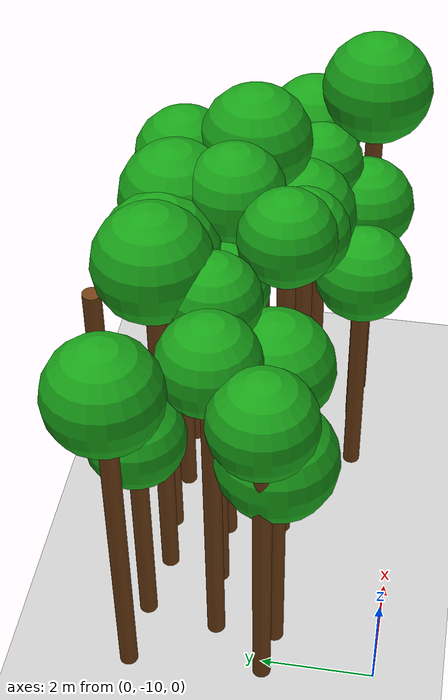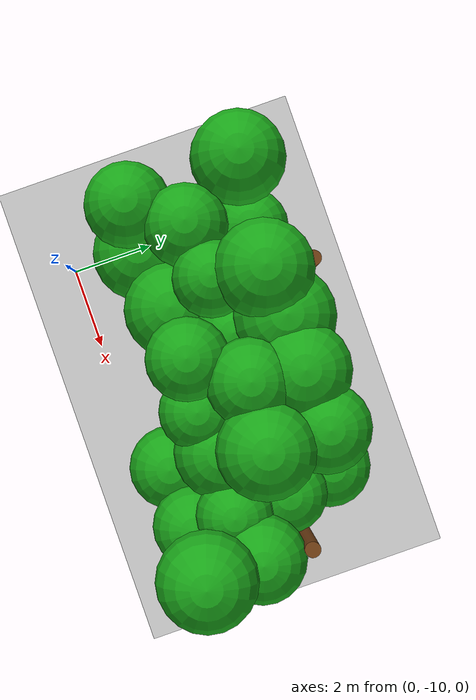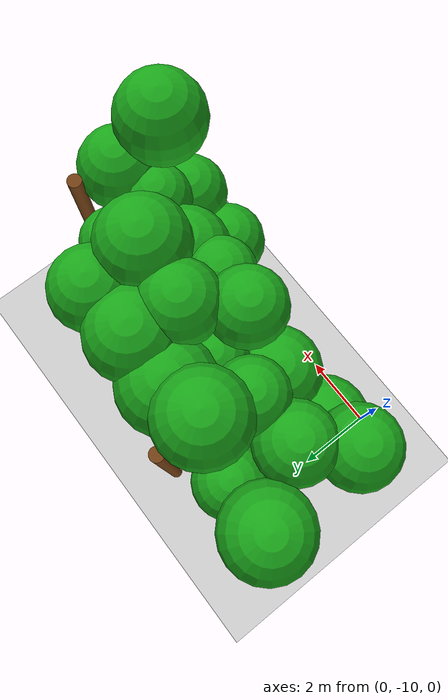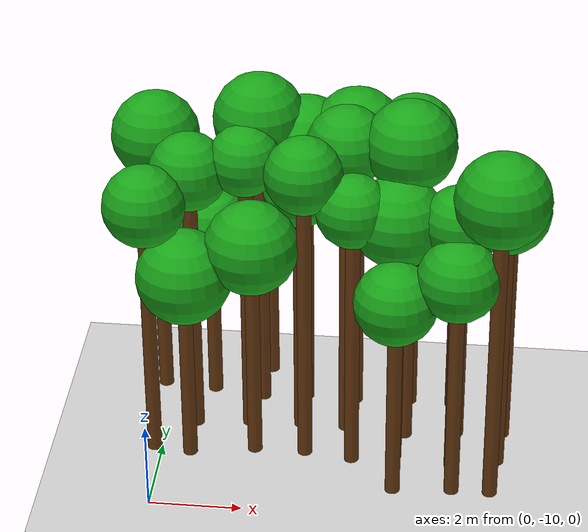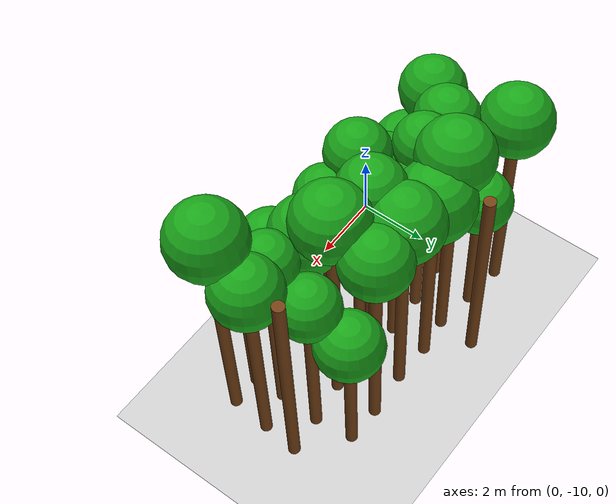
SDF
<sdf version="1.6">
 <world name="forest_world">
  <include><uri>model://sun</uri></include>
  <include><uri>model://ground_plane</uri></include>
  <model name="tree_1497_trunk">
   <static>true</static>
   <pose>-0.18 -8.03 2.88 0 0 0</pose>
   <link name="link">
    <collision name="collision">
     <geometry><cylinder><radius>0.16</radius><length>5.76</length></cylinder></geometry>
    </collision>
    <visual name="visual">
     <geometry><cylinder><radius>0.16</radius><length>5.76</length></cylinder></geometry>
     <material><ambient>0.35 0.20 0.05 1</ambient><diffuse>0.45 0.25 0.08 1</diffuse></material>
    </visual>
   </link>
  </model>
  <model name="tree_1497_leaf">
   <static>true</static>
   <pose>-0.18 -8.03 6.29 0 0 0</pose>
   <link name="link">
    <collision name="collision"><geometry><sphere><radius>0.88</radius></sphere></geometry></collision>
    <visual name="visual">
     <geometry><sphere><radius>0.88</radius></sphere></geometry>
     <material><ambient>0.05 0.45 0.05 1</ambient><diffuse>0.10 0.65 0.10 1</diffuse></material>
    </visual>
   </link>
  </model>
  <model name="tree_1499_trunk">
   <static>true</static>
   <pose>-0.29 -5.65 3.02 0 0 0</pose>
   <link name="link">
    <collision name="collision">
     <geometry><cylinder><radius>0.16</radius><length>6.04</length></cylinder></geometry>
    </collision>
    <visual name="visual">
     <geometry><cylinder><radius>0.16</radius><length>6.04</length></cylinder></geometry>
     <material><ambient>0.35 0.20 0.05 1</ambient><diffuse>0.45 0.25 0.08 1</diffuse></material>
    </visual>
   </link>
  </model>
  <model name="tree_1499_leaf">
   <static>true</static>
   <pose>-0.29 -5.65 6.62 0 0 0</pose>
   <link name="link">
    <collision name="collision"><geometry><sphere><radius>0.96</radius></sphere></geometry></collision>
    <visual name="visual">
     <geometry><sphere><radius>0.96</radius></sphere></geometry>
     <material><ambient>0.05 0.45 0.05 1</ambient><diffuse>0.10 0.65 0.10 1</diffuse></material>
    </visual>
   </link>
  </model>
  <model name="tree_1546_trunk">
   <static>true</static>
   <pose>0.63 -8.14 2.02 0 0 0</pose>
   <link name="link">
    <collision name="collision">
     <geometry><cylinder><radius>0.16</radius><length>4.04</length></cylinder></geometry>
    </collision>
    <visual name="visual">
     <geometry><cylinder><radius>0.16</radius><length>4.04</length></cylinder></geometry>
     <material><ambient>0.35 0.20 0.05 1</ambient><diffuse>0.45 0.25 0.08 1</diffuse></material>
    </visual>
   </link>
  </model>
  <model name="tree_1546_leaf">
   <static>true</static>
   <pose>0.63 -8.14 4.66 0 0 0</pose>
   <link name="link">
    <collision name="collision"><geometry><sphere><radius>1.03</radius></sphere></geometry></collision>
    <visual name="visual">
     <geometry><sphere><radius>1.03</radius></sphere></geometry>
     <material><ambient>0.05 0.45 0.05 1</ambient><diffuse>0.10 0.65 0.10 1</diffuse></material>
    </visual>
   </link>
  </model>
  <model name="tree_1547_trunk">
   <static>true</static>
   <pose>0.63 -7.07 3.05 0 0 0</pose>
   <link name="link">
    <collision name="collision">
     <geometry><cylinder><radius>0.16</radius><length>6.09</length></cylinder></geometry>
    </collision>
    <visual name="visual">
     <geometry><cylinder><radius>0.16</radius><length>6.09</length></cylinder></geometry>
     <material><ambient>0.35 0.20 0.05 1</ambient><diffuse>0.45 0.25 0.08 1</diffuse></material>
    </visual>
   </link>
  </model>
  <model name="tree_1547_leaf">
   <static>true</static>
   <pose>0.63 -7.07 6.60 0 0 0</pose>
   <link name="link">
    <collision name="collision"><geometry><sphere><radius>0.85</radius></sphere></geometry></collision>
    <visual name="visual">
     <geometry><sphere><radius>0.85</radius></sphere></geometry>
     <material><ambient>0.05 0.45 0.05 1</ambient><diffuse>0.10 0.65 0.10 1</diffuse></material>
    </visual>
   </link>
  </model>
  <model name="tree_1548_trunk">
   <static>true</static>
   <pose>0.87 -5.76 2.00 0 0 0</pose>
   <link name="link">
    <collision name="collision">
     <geometry><cylinder><radius>0.16</radius><length>4.00</length></cylinder></geometry>
    </collision>
    <visual name="visual">
     <geometry><cylinder><radius>0.16</radius><length>4.00</length></cylinder></geometry>
     <material><ambient>0.35 0.20 0.05 1</ambient><diffuse>0.45 0.25 0.08 1</diffuse></material>
    </visual>
   </link>
  </model>
  <model name="tree_1548_leaf">
   <static>true</static>
   <pose>0.87 -5.76 4.52 0 0 0</pose>
   <link name="link">
    <collision name="collision"><geometry><sphere><radius>0.86</radius></sphere></geometry></collision>
    <visual name="visual">
     <geometry><sphere><radius>0.86</radius></sphere></geometry>
     <material><ambient>0.05 0.45 0.05 1</ambient><diffuse>0.10 0.65 0.10 1</diffuse></material>
    </visual>
   </link>
  </model>
  <model name="tree_1596_trunk">
   <static>true</static>
   <pose>2.04 -7.90 2.36 0 0 0</pose>
   <link name="link">
    <collision name="collision">
     <geometry><cylinder><radius>0.16</radius><length>4.72</length></cylinder></geometry>
    </collision>
    <visual name="visual">
     <geometry><cylinder><radius>0.16</radius><length>4.72</length></cylinder></geometry>
     <material><ambient>0.35 0.20 0.05 1</ambient><diffuse>0.45 0.25 0.08 1</diffuse></material>
    </visual>
   </link>
  </model>
  <model name="tree_1596_leaf">
   <static>true</static>
   <pose>2.04 -7.90 5.32 0 0 0</pose>
   <link name="link">
    <collision name="collision"><geometry><sphere><radius>1.01</radius></sphere></geometry></collision>
    <visual name="visual">
     <geometry><sphere><radius>1.01</radius></sphere></geometry>
     <material><ambient>0.05 0.45 0.05 1</ambient><diffuse>0.10 0.65 0.10 1</diffuse></material>
    </visual>
   </link>
  </model>
  <model name="tree_1597_trunk">
   <static>true</static>
   <pose>1.81 -6.94 3.20 0 0 0</pose>
   <link name="link">
    <collision name="collision">
     <geometry><cylinder><radius>0.16</radius><length>6.41</length></cylinder></geometry>
    </collision>
    <visual name="visual">
     <geometry><cylinder><radius>0.16</radius><length>6.41</length></cylinder></geometry>
     <material><ambient>0.35 0.20 0.05 1</ambient><diffuse>0.45 0.25 0.08 1</diffuse></material>
    </visual>
   </link>
  </model>
  <model name="tree_1597_leaf">
   <static>true</static>
   <pose>1.81 -6.94 6.87 0 0 0</pose>
   <link name="link">
    <collision name="collision"><geometry><sphere><radius>0.78</radius></sphere></geometry></collision>
    <visual name="visual">
     <geometry><sphere><radius>0.78</radius></sphere></geometry>
     <material><ambient>0.05 0.45 0.05 1</ambient><diffuse>0.10 0.65 0.10 1</diffuse></material>
    </visual>
   </link>
  </model>
  <model name="tree_1598_trunk">
   <static>true</static>
   <pose>2.00 -5.94 3.36 0 0 0</pose>
   <link name="link">
    <collision name="collision">
     <geometry><cylinder><radius>0.16</radius><length>6.73</length></cylinder></geometry>
    </collision>
    <visual name="visual">
     <geometry><cylinder><radius>0.16</radius><length>6.73</length></cylinder></geometry>
     <material><ambient>0.35 0.20 0.05 1</ambient><diffuse>0.45 0.25 0.08 1</diffuse></material>
    </visual>
   </link>
  </model>
  <model name="tree_1598_leaf">
   <static>true</static>
   <pose>2.00 -5.94 7.32 0 0 0</pose>
   <link name="link">
    <collision name="collision"><geometry><sphere><radius>0.99</radius></sphere></geometry></collision>
    <visual name="visual">
     <geometry><sphere><radius>0.99</radius></sphere></geometry>
     <material><ambient>0.05 0.45 0.05 1</ambient><diffuse>0.10 0.65 0.10 1</diffuse></material>
    </visual>
   </link>
  </model>
  <model name="tree_1599_trunk">
   <static>true</static>
   <pose>2.07 -4.88 3.24 0 0 0</pose>
   <link name="link">
    <collision name="collision">
     <geometry><cylinder><radius>0.16</radius><length>6.48</length></cylinder></geometry>
    </collision>
    <visual name="visual">
     <geometry><cylinder><radius>0.16</radius><length>6.48</length></cylinder></geometry>
     <material><ambient>0.35 0.20 0.05 1</ambient><diffuse>0.45 0.25 0.08 1</diffuse></material>
    </visual>
   </link>
  </model>
  <model name="tree_1647_trunk">
   <static>true</static>
   <pose>3.15 -7.90 3.33 0 0 0</pose>
   <link name="link">
    <collision name="collision">
     <geometry><cylinder><radius>0.16</radius><length>6.66</length></cylinder></geometry>
    </collision>
    <visual name="visual">
     <geometry><cylinder><radius>0.16</radius><length>6.66</length></cylinder></geometry>
     <material><ambient>0.35 0.20 0.05 1</ambient><diffuse>0.45 0.25 0.08 1</diffuse></material>
    </visual>
   </link>
  </model>
  <model name="tree_1647_leaf">
   <static>true</static>
   <pose>3.15 -7.90 7.16 0 0 0</pose>
   <link name="link">
    <collision name="collision"><geometry><sphere><radius>0.83</radius></sphere></geometry></collision>
    <visual name="visual">
     <geometry><sphere><radius>0.83</radius></sphere></geometry>
     <material><ambient>0.05 0.45 0.05 1</ambient><diffuse>0.10 0.65 0.10 1</diffuse></material>
    </visual>
   </link>
  </model>
  <model name="tree_1648_trunk">
   <static>true</static>
   <pose>2.96 -6.89 2.84 0 0 0</pose>
   <link name="link">
    <collision name="collision">
     <geometry><cylinder><radius>0.16</radius><length>5.69</length></cylinder></geometry>
    </collision>
    <visual name="visual">
     <geometry><cylinder><radius>0.16</radius><length>5.69</length></cylinder></geometry>
     <material><ambient>0.35 0.20 0.05 1</ambient><diffuse>0.45 0.25 0.08 1</diffuse></material>
    </visual>
   </link>
  </model>
  <model name="tree_1648_leaf">
   <static>true</static>
   <pose>2.96 -6.89 6.15 0 0 0</pose>
   <link name="link">
    <collision name="collision"><geometry><sphere><radius>0.78</radius></sphere></geometry></collision>
    <visual name="visual">
     <geometry><sphere><radius>0.78</radius></sphere></geometry>
     <material><ambient>0.05 0.45 0.05 1</ambient><diffuse>0.10 0.65 0.10 1</diffuse></material>
    </visual>
   </link>
  </model>
  <model name="tree_1649_trunk">
   <static>true</static>
   <pose>2.98 -5.83 3.04 0 0 0</pose>
   <link name="link">
    <collision name="collision">
     <geometry><cylinder><radius>0.16</radius><length>6.09</length></cylinder></geometry>
    </collision>
    <visual name="visual">
     <geometry><cylinder><radius>0.16</radius><length>6.09</length></cylinder></geometry>
     <material><ambient>0.35 0.20 0.05 1</ambient><diffuse>0.45 0.25 0.08 1</diffuse></material>
    </visual>
   </link>
  </model>
  <model name="tree_1649_leaf">
   <static>true</static>
   <pose>2.98 -5.83 6.71 0 0 0</pose>
   <link name="link">
    <collision name="collision"><geometry><sphere><radius>1.04</radius></sphere></geometry></collision>
    <visual name="visual">
     <geometry><sphere><radius>1.04</radius></sphere></geometry>
     <material><ambient>0.05 0.45 0.05 1</ambient><diffuse>0.10 0.65 0.10 1</diffuse></material>
    </visual>
   </link>
  </model>
  <model name="tree_1702_trunk">
   <static>true</static>
   <pose>4.19 -8.06 3.00 0 0 0</pose>
   <link name="link">
    <collision name="collision">
     <geometry><cylinder><radius>0.16</radius><length>5.99</length></cylinder></geometry>
    </collision>
    <visual name="visual">
     <geometry><cylinder><radius>0.16</radius><length>5.99</length></cylinder></geometry>
     <material><ambient>0.35 0.20 0.05 1</ambient><diffuse>0.45 0.25 0.08 1</diffuse></material>
    </visual>
   </link>
  </model>
  <model name="tree_1702_leaf">
   <static>true</static>
   <pose>4.19 -8.06 6.47 0 0 0</pose>
   <link name="link">
    <collision name="collision"><geometry><sphere><radius>0.79</radius></sphere></geometry></collision>
    <visual name="visual">
     <geometry><sphere><radius>0.79</radius></sphere></geometry>
     <material><ambient>0.05 0.45 0.05 1</ambient><diffuse>0.10 0.65 0.10 1</diffuse></material>
    </visual>
   </link>
  </model>
  <model name="tree_1703_trunk">
   <static>true</static>
   <pose>3.96 -6.91 3.40 0 0 0</pose>
   <link name="link">
    <collision name="collision">
     <geometry><cylinder><radius>0.16</radius><length>6.81</length></cylinder></geometry>
    </collision>
    <visual name="visual">
     <geometry><cylinder><radius>0.16</radius><length>6.81</length></cylinder></geometry>
     <material><ambient>0.35 0.20 0.05 1</ambient><diffuse>0.45 0.25 0.08 1</diffuse></material>
    </visual>
   </link>
  </model>
  <model name="tree_1703_leaf">
   <static>true</static>
   <pose>3.96 -6.91 7.33 0 0 0</pose>
   <link name="link">
    <collision name="collision"><geometry><sphere><radius>0.87</radius></sphere></geometry></collision>
    <visual name="visual">
     <geometry><sphere><radius>0.87</radius></sphere></geometry>
     <material><ambient>0.05 0.45 0.05 1</ambient><diffuse>0.10 0.65 0.10 1</diffuse></material>
    </visual>
   </link>
  </model>
  <model name="tree_1704_trunk">
   <static>true</static>
   <pose>4.09 -5.88 3.23 0 0 0</pose>
   <link name="link">
    <collision name="collision">
     <geometry><cylinder><radius>0.16</radius><length>6.46</length></cylinder></geometry>
    </collision>
    <visual name="visual">
     <geometry><cylinder><radius>0.16</radius><length>6.46</length></cylinder></geometry>
     <material><ambient>0.35 0.20 0.05 1</ambient><diffuse>0.45 0.25 0.08 1</diffuse></material>
    </visual>
   </link>
  </model>
  <model name="tree_1704_leaf">
   <static>true</static>
   <pose>4.09 -5.88 7.05 0 0 0</pose>
   <link name="link">
    <collision name="collision"><geometry><sphere><radius>0.99</radius></sphere></geometry></collision>
    <visual name="visual">
     <geometry><sphere><radius>0.99</radius></sphere></geometry>
     <material><ambient>0.05 0.45 0.05 1</ambient><diffuse>0.10 0.65 0.10 1</diffuse></material>
    </visual>
   </link>
  </model>
  <model name="tree_1756_trunk">
   <static>true</static>
   <pose>5.17 -9.03 2.18 0 0 0</pose>
   <link name="link">
    <collision name="collision">
     <geometry><cylinder><radius>0.16</radius><length>4.36</length></cylinder></geometry>
    </collision>
    <visual name="visual">
     <geometry><cylinder><radius>0.16</radius><length>4.36</length></cylinder></geometry>
     <material><ambient>0.35 0.20 0.05 1</ambient><diffuse>0.45 0.25 0.08 1</diffuse></material>
    </visual>
   </link>
  </model>
  <model name="tree_1756_leaf">
   <static>true</static>
   <pose>5.17 -9.03 4.89 0 0 0</pose>
   <link name="link">
    <collision name="collision"><geometry><sphere><radius>0.89</radius></sphere></geometry></collision>
    <visual name="visual">
     <geometry><sphere><radius>0.89</radius></sphere></geometry>
     <material><ambient>0.05 0.45 0.05 1</ambient><diffuse>0.10 0.65 0.10 1</diffuse></material>
    </visual>
   </link>
  </model>
  <model name="tree_1757_trunk">
   <static>true</static>
   <pose>5.12 -7.87 2.78 0 0 0</pose>
   <link name="link">
    <collision name="collision">
     <geometry><cylinder><radius>0.16</radius><length>5.56</length></cylinder></geometry>
    </collision>
    <visual name="visual">
     <geometry><cylinder><radius>0.16</radius><length>5.56</length></cylinder></geometry>
     <material><ambient>0.35 0.20 0.05 1</ambient><diffuse>0.45 0.25 0.08 1</diffuse></material>
    </visual>
   </link>
  </model>
  <model name="tree_1757_leaf">
   <static>true</static>
   <pose>5.12 -7.87 6.15 0 0 0</pose>
   <link name="link">
    <collision name="collision"><geometry><sphere><radius>0.99</radius></sphere></geometry></collision>
    <visual name="visual">
     <geometry><sphere><radius>0.99</radius></sphere></geometry>
     <material><ambient>0.05 0.45 0.05 1</ambient><diffuse>0.10 0.65 0.10 1</diffuse></material>
    </visual>
   </link>
  </model>
  <model name="tree_1758_trunk">
   <static>true</static>
   <pose>5.29 -7.05 3.45 0 0 0</pose>
   <link name="link">
    <collision name="collision">
     <geometry><cylinder><radius>0.16</radius><length>6.91</length></cylinder></geometry>
    </collision>
    <visual name="visual">
     <geometry><cylinder><radius>0.16</radius><length>6.91</length></cylinder></geometry>
     <material><ambient>0.35 0.20 0.05 1</ambient><diffuse>0.45 0.25 0.08 1</diffuse></material>
    </visual>
   </link>
  </model>
  <model name="tree_1758_leaf">
   <static>true</static>
   <pose>5.29 -7.05 7.50 0 0 0</pose>
   <link name="link">
    <collision name="collision"><geometry><sphere><radius>0.98</radius></sphere></geometry></collision>
    <visual name="visual">
     <geometry><sphere><radius>0.98</radius></sphere></geometry>
     <material><ambient>0.05 0.45 0.05 1</ambient><diffuse>0.10 0.65 0.10 1</diffuse></material>
    </visual>
   </link>
  </model>
  <model name="tree_1759_trunk">
   <static>true</static>
   <pose>5.31 -5.80 3.24 0 0 0</pose>
   <link name="link">
    <collision name="collision">
     <geometry><cylinder><radius>0.16</radius><length>6.47</length></cylinder></geometry>
    </collision>
    <visual name="visual">
     <geometry><cylinder><radius>0.16</radius><length>6.47</length></cylinder></geometry>
     <material><ambient>0.35 0.20 0.05 1</ambient><diffuse>0.45 0.25 0.08 1</diffuse></material>
    </visual>
   </link>
  </model>
  <model name="tree_1759_leaf">
   <static>true</static>
   <pose>5.31 -5.80 7.01 0 0 0</pose>
   <link name="link">
    <collision name="collision"><geometry><sphere><radius>0.90</radius></sphere></geometry></collision>
    <visual name="visual">
     <geometry><sphere><radius>0.90</radius></sphere></geometry>
     <material><ambient>0.05 0.45 0.05 1</ambient><diffuse>0.10 0.65 0.10 1</diffuse></material>
    </visual>
   </link>
  </model>
  <model name="tree_1811_trunk">
   <static>true</static>
   <pose>6.44 -8.93 2.47 0 0 0</pose>
   <link name="link">
    <collision name="collision">
     <geometry><cylinder><radius>0.16</radius><length>4.95</length></cylinder></geometry>
    </collision>
    <visual name="visual">
     <geometry><cylinder><radius>0.16</radius><length>4.95</length></cylinder></geometry>
     <material><ambient>0.35 0.20 0.05 1</ambient><diffuse>0.45 0.25 0.08 1</diffuse></material>
    </visual>
   </link>
  </model>
  <model name="tree_1811_leaf">
   <static>true</static>
   <pose>6.44 -8.93 5.48 0 0 0</pose>
   <link name="link">
    <collision name="collision"><geometry><sphere><radius>0.88</radius></sphere></geometry></collision>
    <visual name="visual">
     <geometry><sphere><radius>0.88</radius></sphere></geometry>
     <material><ambient>0.05 0.45 0.05 1</ambient><diffuse>0.10 0.65 0.10 1</diffuse></material>
    </visual>
   </link>
  </model>
  <model name="tree_1812_trunk">
   <static>true</static>
   <pose>6.39 -8.06 2.93 0 0 0</pose>
   <link name="link">
    <collision name="collision">
     <geometry><cylinder><radius>0.16</radius><length>5.87</length></cylinder></geometry>
    </collision>
    <visual name="visual">
     <geometry><cylinder><radius>0.16</radius><length>5.87</length></cylinder></geometry>
     <material><ambient>0.35 0.20 0.05 1</ambient><diffuse>0.45 0.25 0.08 1</diffuse></material>
    </visual>
   </link>
  </model>
  <model name="tree_1812_leaf">
   <static>true</static>
   <pose>6.39 -8.06 6.33 0 0 0</pose>
   <link name="link">
    <collision name="collision"><geometry><sphere><radius>0.78</radius></sphere></geometry></collision>
    <visual name="visual">
     <geometry><sphere><radius>0.78</radius></sphere></geometry>
     <material><ambient>0.05 0.45 0.05 1</ambient><diffuse>0.10 0.65 0.10 1</diffuse></material>
    </visual>
   </link>
  </model>
  <model name="tree_1813_trunk">
   <static>true</static>
   <pose>6.43 -6.90 2.52 0 0 0</pose>
   <link name="link">
    <collision name="collision">
     <geometry><cylinder><radius>0.16</radius><length>5.05</length></cylinder></geometry>
    </collision>
    <visual name="visual">
     <geometry><cylinder><radius>0.16</radius><length>5.05</length></cylinder></geometry>
     <material><ambient>0.35 0.20 0.05 1</ambient><diffuse>0.45 0.25 0.08 1</diffuse></material>
    </visual>
   </link>
  </model>
  <model name="tree_1813_leaf">
   <static>true</static>
   <pose>6.43 -6.90 5.55 0 0 0</pose>
   <link name="link">
    <collision name="collision"><geometry><sphere><radius>0.83</radius></sphere></geometry></collision>
    <visual name="visual">
     <geometry><sphere><radius>0.83</radius></sphere></geometry>
     <material><ambient>0.05 0.45 0.05 1</ambient><diffuse>0.10 0.65 0.10 1</diffuse></material>
    </visual>
   </link>
  </model>
  <model name="tree_1814_trunk">
   <static>true</static>
   <pose>6.28 -5.84 2.09 0 0 0</pose>
   <link name="link">
    <collision name="collision">
     <geometry><cylinder><radius>0.16</radius><length>4.18</length></cylinder></geometry>
    </collision>
    <visual name="visual">
     <geometry><cylinder><radius>0.16</radius><length>4.18</length></cylinder></geometry>
     <material><ambient>0.35 0.20 0.05 1</ambient><diffuse>0.45 0.25 0.08 1</diffuse></material>
    </visual>
   </link>
  </model>
  <model name="tree_1814_leaf">
   <static>true</static>
   <pose>6.28 -5.84 4.70 0 0 0</pose>
   <link name="link">
    <collision name="collision"><geometry><sphere><radius>0.88</radius></sphere></geometry></collision>
    <visual name="visual">
     <geometry><sphere><radius>0.88</radius></sphere></geometry>
     <material><ambient>0.05 0.45 0.05 1</ambient><diffuse>0.10 0.65 0.10 1</diffuse></material>
    </visual>
   </link>
  </model>
  <model name="tree_1866_trunk">
   <static>true</static>
   <pose>7.27 -8.94 3.44 0 0 0</pose>
   <link name="link">
    <collision name="collision">
     <geometry><cylinder><radius>0.16</radius><length>6.87</length></cylinder></geometry>
    </collision>
    <visual name="visual">
     <geometry><cylinder><radius>0.16</radius><length>6.87</length></cylinder></geometry>
     <material><ambient>0.35 0.20 0.05 1</ambient><diffuse>0.45 0.25 0.08 1</diffuse></material>
    </visual>
   </link>
  </model>
  <model name="tree_1866_leaf">
   <static>true</static>
   <pose>7.27 -8.94 7.47 0 0 0</pose>
   <link name="link">
    <collision name="collision"><geometry><sphere><radius>1.00</radius></sphere></geometry></collision>
    <visual name="visual">
     <geometry><sphere><radius>1.00</radius></sphere></geometry>
     <material><ambient>0.05 0.45 0.05 1</ambient><diffuse>0.10 0.65 0.10 1</diffuse></material>
    </visual>
   </link>
  </model>
  <model name="tree_1867_trunk">
   <static>true</static>
   <pose>7.37 -7.83 2.99 0 0 0</pose>
   <link name="link">
    <collision name="collision">
     <geometry><cylinder><radius>0.16</radius><length>5.98</length></cylinder></geometry>
    </collision>
    <visual name="visual">
     <geometry><cylinder><radius>0.16</radius><length>5.98</length></cylinder></geometry>
     <material><ambient>0.35 0.20 0.05 1</ambient><diffuse>0.45 0.25 0.08 1</diffuse></material>
    </visual>
   </link>
  </model>
  <model name="tree_1867_leaf">
   <static>true</static>
   <pose>7.37 -7.83 6.53 0 0 0</pose>
   <link name="link">
    <collision name="collision"><geometry><sphere><radius>0.91</radius></sphere></geometry></collision>
    <visual name="visual">
     <geometry><sphere><radius>0.91</radius></sphere></geometry>
     <material><ambient>0.05 0.45 0.05 1</ambient><diffuse>0.10 0.65 0.10 1</diffuse></material>
    </visual>
   </link>
  </model>
  <model name="tree_1868_trunk">
   <static>true</static>
   <pose>7.45 -6.83 3.49 0 0 0</pose>
   <link name="link">
    <collision name="collision">
     <geometry><cylinder><radius>0.16</radius><length>6.98</length></cylinder></geometry>
    </collision>
    <visual name="visual">
     <geometry><cylinder><radius>0.16</radius><length>6.98</length></cylinder></geometry>
     <material><ambient>0.35 0.20 0.05 1</ambient><diffuse>0.45 0.25 0.08 1</diffuse></material>
    </visual>
   </link>
  </model>
 </world>
</sdf>
